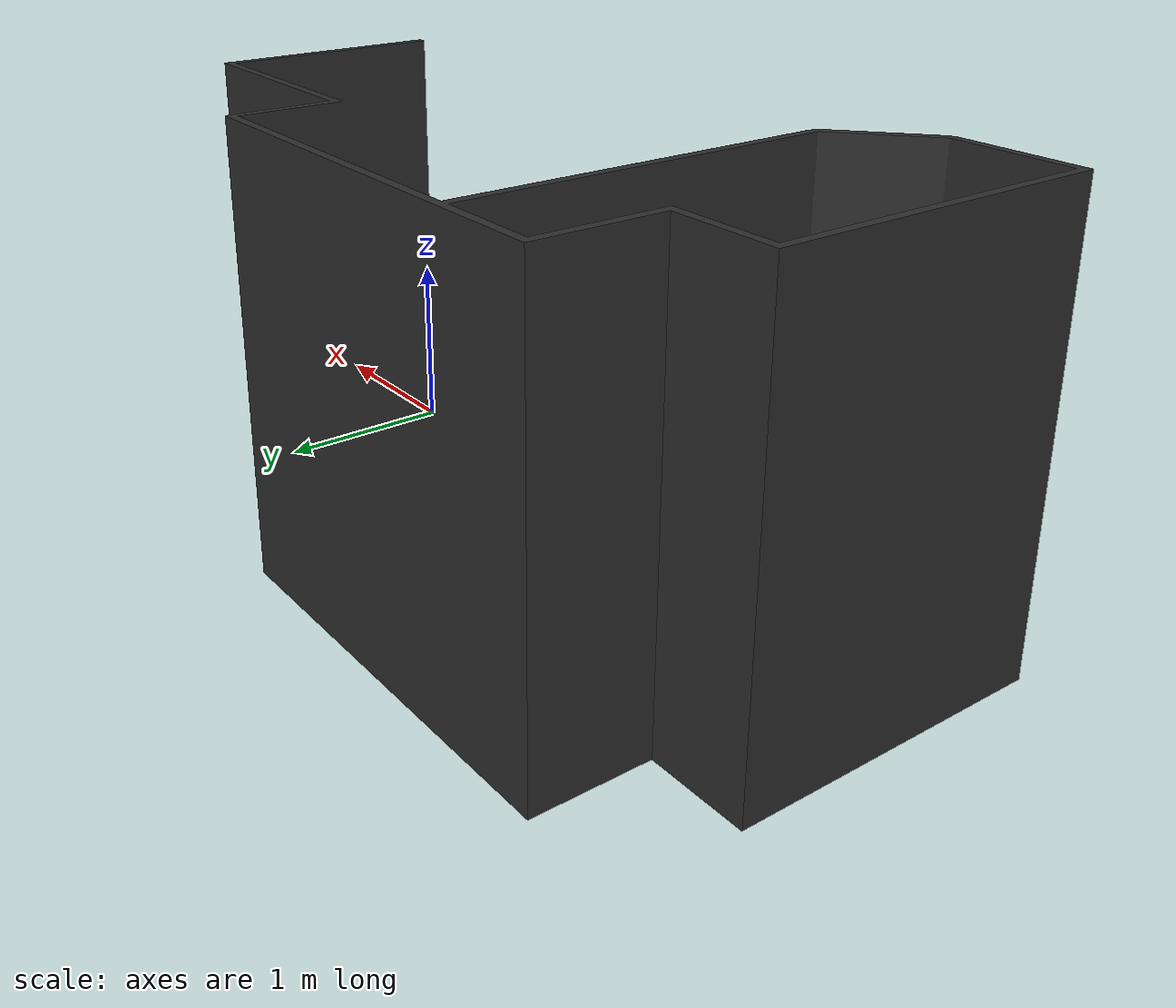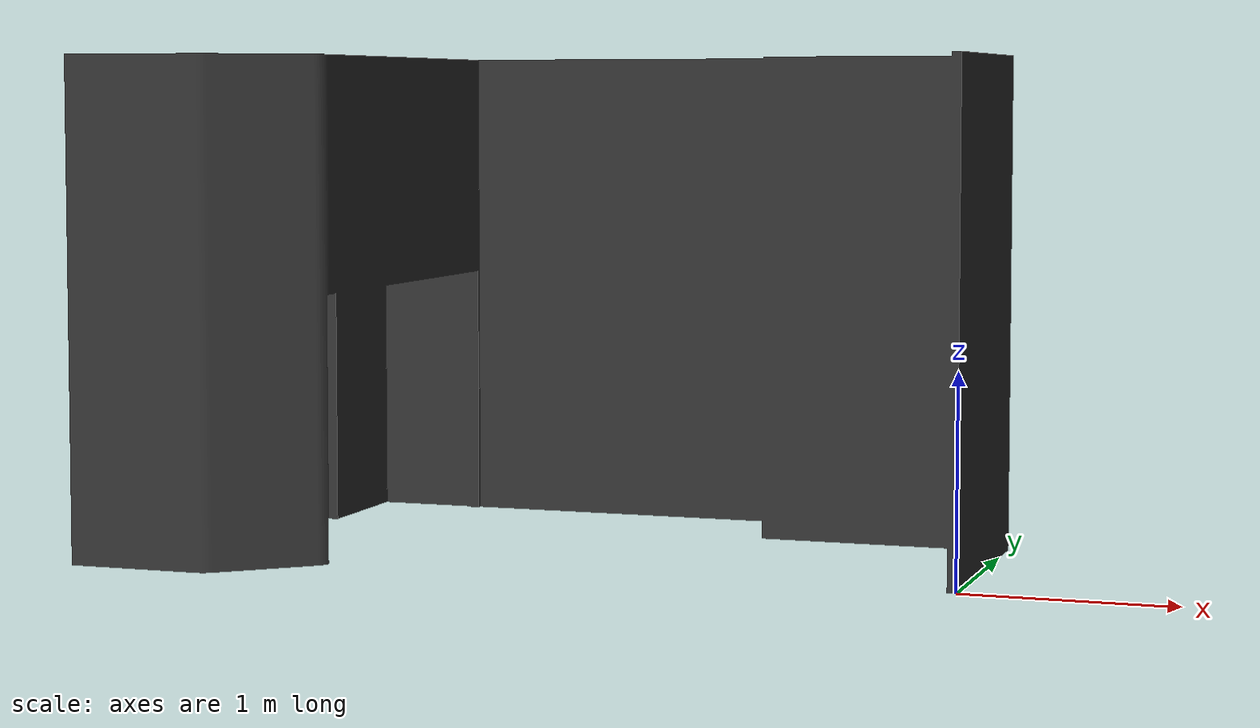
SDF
<?xml version="1.0"?>
<sdf version="1.9">
  <model name="carter_droit">
    <static>true</static>
    <link name="carter_droit_link">
      <visual name="carter_droit_visual">
        <geometry>
          <mesh>
            <uri>model://carter_droit/meshes/carter_droit.stl</uri>
          </mesh>
        </geometry>
        <material>
          <ambient>0.18 0.18 0.18 1</ambient>
          <diffuse>0.18 0.18 0.18 1</diffuse>
          <specular>0.05 0.05 0.05 1</specular>
          <emissive>0 0 0 1</emissive>
        </material>
      </visual>
      <collision name="carter_droit_collision">
        <geometry>
          <mesh>
            <uri>model://carter_droit/meshes/carter_droit.stl</uri>
          </mesh>
        </geometry>
      </collision>
    </link>
  </model>
</sdf>
